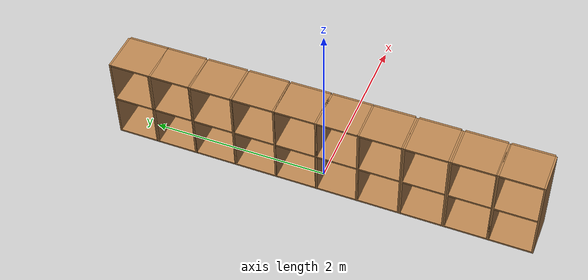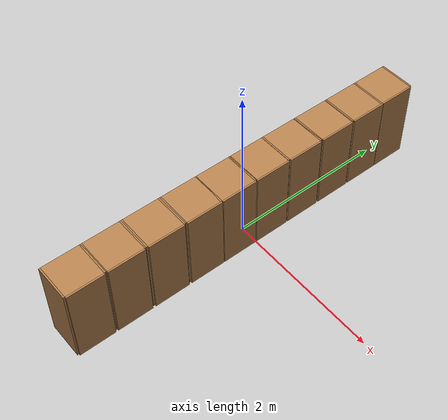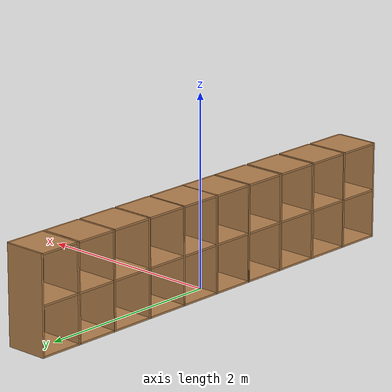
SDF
<?xml version='1.0'?>
<sdf version='1.6'>
  <model name='Locker'>
    <model name='cabinet'>
      <static>1</static>
      <link name='cabinet_bottom_plate'>
        <inertial>
          <pose frame=''>0 0 -1 0 -0 0</pose>
          <inertia>
            <ixx>2.05</ixx>
            <ixy>0</ixy>
            <ixz>0</ixz>
            <iyy>2.05</iyy>
            <iyz>0</iyz>
            <izz>2.05</izz>
          </inertia>
          <mass>25</mass>
        </inertial>
        <collision name='cabinet_bottom_plate_geom'>
          <pose frame=''>0 0 0.01 0 -0 0</pose>
          <geometry>
            <box>
              <size>0.45 0.45 0.02</size>
            </box>
          </geometry>
        </collision>
        <visual name='cabinet_bottom_plate_geom_visual'>
          <pose frame=''>0 0 0.01 0 -0 0</pose>
          <geometry>
            <box>
              <size>0.45 0.45 0.02</size>
            </box>
          </geometry>
          <material>
            <script>
              <uri>file://media/materials/scripts/gazebo.material</uri>
              <name>Gazebo/Wood</name>
            </script>
          </material>
        </visual>
        <collision name='cabinet_bottom_plate_geom_cabinet_back_plate'>
          <pose frame=''>0.235 0 0.51 0 -0 0</pose>
          <geometry>
            <box>
              <size>0.02 0.45 1.02</size>
            </box>
          </geometry>
        </collision>
        <visual name='cabinet_bottom_plate_geom_cabinet_back_plate_visual'>
          <pose frame=''>0.235 0 0.51 0 -0 0</pose>
          <geometry>
            <box>
              <size>0.02 0.45 1.02</size>
            </box>
          </geometry>
          <material>
            <script>
              <uri>file://media/materials/scripts/gazebo.material</uri>
              <name>Gazebo/Wood</name>
            </script>
          </material>
        </visual>
        <collision name='cabinet_bottom_plate_geom_cabinet_left_plate'>
          <pose frame=''>0 0.235 0.51 0 -0 0</pose>
          <geometry>
            <box>
              <size>0.45 0.02 1.02</size>
            </box>
          </geometry>
        </collision>
        <visual name='cabinet_bottom_plate_geom_cabinet_left_plate_visual'>
          <pose frame=''>0 0.235 0.51 0 -0 0</pose>
          <geometry>
            <box>
              <size>0.45 0.02 1.02</size>
            </box>
          </geometry>
          <material>
            <script>
              <uri>file://media/materials/scripts/gazebo.material</uri>
              <name>Gazebo/Wood</name>
            </script>
          </material>
        </visual>
        <collision name='cabinet_bottom_plate_geom_cabinet_middle_plate'>
          <pose frame=''>0 0 0.51 0 -0 0</pose>
          <geometry>
            <box>
              <size>0.45 0.45 0.02</size>
            </box>
          </geometry>
        </collision>
        <visual name='cabinet_bottom_plate_geom_cabinet_middle_plate_visual'>
          <pose frame=''>0 0 0.51 0 -0 0</pose>
          <geometry>
            <box>
              <size>0.45 0.45 0.02</size>
            </box>
          </geometry>
          <material>
            <script>
              <uri>file://media/materials/scripts/gazebo.material</uri>
              <name>Gazebo/Wood</name>
            </script>
          </material>
        </visual>
        <collision name='cabinet_bottom_plate_geom_cabinet_right_plate'>
          <pose frame=''>0 -0.235 0.51 0 -0 0</pose>
          <geometry>
            <box>
              <size>0.45 0.02 1.02</size>
            </box>
          </geometry>
        </collision>
        <visual name='cabinet_bottom_plate_geom_cabinet_right_plate_visual'>
          <pose frame=''>0 -0.235 0.51 0 -0 0</pose>
          <geometry>
            <box>
              <size>0.45 0.02 1.02</size>
            </box>
          </geometry>
          <material>
            <script>
              <uri>file://media/materials/scripts/gazebo.material</uri>
              <name>Gazebo/Wood</name>
            </script>
          </material>
        </visual>
        <collision name='cabinet_bottom_plate_geom_cabinet_top_plate'>
          <pose frame=''>0 0 1.01 0 -0 0</pose>
          <geometry>
            <box>
              <size>0.45 0.45 0.02</size>
            </box>
          </geometry>
        </collision>
        <visual name='cabinet_bottom_plate_geom_cabinet_top_plate_visual'>
          <pose frame=''>0 0 1.01 0 -0 0</pose>
          <geometry>
            <box>
              <size>0.45 0.45 0.02</size>
            </box>
          </geometry>
          <material>
            <script>
              <uri>file://media/materials/scripts/gazebo.material</uri>
              <name>Gazebo/Wood</name>
            </script>
          </material>
        </visual>
      </link>
      <pose frame=''>-0 2.11575 0 0 -0 0</pose>
    </model>
    <model name='cabinet_0'>
      <static>1</static>
      <link name='cabinet_bottom_plate'>
        <inertial>
          <pose frame=''>0 0 -1 0 -0 0</pose>
          <inertia>
            <ixx>2.05</ixx>
            <ixy>0</ixy>
            <ixz>0</ixz>
            <iyy>2.05</iyy>
            <iyz>0</iyz>
            <izz>2.05</izz>
          </inertia>
          <mass>25</mass>
        </inertial>
        <collision name='cabinet_bottom_plate_geom'>
          <pose frame=''>0 0 0.01 0 -0 0</pose>
          <geometry>
            <box>
              <size>0.45 0.45 0.02</size>
            </box>
          </geometry>
        </collision>
        <visual name='cabinet_bottom_plate_geom_visual'>
          <pose frame=''>0 0 0.01 0 -0 0</pose>
          <geometry>
            <box>
              <size>0.45 0.45 0.02</size>
            </box>
          </geometry>
          <material>
            <script>
              <uri>file://media/materials/scripts/gazebo.material</uri>
              <name>Gazebo/Wood</name>
            </script>
          </material>
        </visual>
        <collision name='cabinet_bottom_plate_geom_cabinet_back_plate'>
          <pose frame=''>0.235 0 0.51 0 -0 0</pose>
          <geometry>
            <box>
              <size>0.02 0.45 1.02</size>
            </box>
          </geometry>
        </collision>
        <visual name='cabinet_bottom_plate_geom_cabinet_back_plate_visual'>
          <pose frame=''>0.235 0 0.51 0 -0 0</pose>
          <geometry>
            <box>
              <size>0.02 0.45 1.02</size>
            </box>
          </geometry>
          <material>
            <script>
              <uri>file://media/materials/scripts/gazebo.material</uri>
              <name>Gazebo/Wood</name>
            </script>
          </material>
        </visual>
        <collision name='cabinet_bottom_plate_geom_cabinet_left_plate'>
          <pose frame=''>0 0.235 0.51 0 -0 0</pose>
          <geometry>
            <box>
              <size>0.45 0.02 1.02</size>
            </box>
          </geometry>
        </collision>
        <visual name='cabinet_bottom_plate_geom_cabinet_left_plate_visual'>
          <pose frame=''>0 0.235 0.51 0 -0 0</pose>
          <geometry>
            <box>
              <size>0.45 0.02 1.02</size>
            </box>
          </geometry>
          <material>
            <script>
              <uri>file://media/materials/scripts/gazebo.material</uri>
              <name>Gazebo/Wood</name>
            </script>
          </material>
        </visual>
        <collision name='cabinet_bottom_plate_geom_cabinet_middle_plate'>
          <pose frame=''>0 0 0.51 0 -0 0</pose>
          <geometry>
            <box>
              <size>0.45 0.45 0.02</size>
            </box>
          </geometry>
        </collision>
        <visual name='cabinet_bottom_plate_geom_cabinet_middle_plate_visual'>
          <pose frame=''>0 0 0.51 0 -0 0</pose>
          <geometry>
            <box>
              <size>0.45 0.45 0.02</size>
            </box>
          </geometry>
          <material>
            <script>
              <uri>file://media/materials/scripts/gazebo.material</uri>
              <name>Gazebo/Wood</name>
            </script>
          </material>
        </visual>
        <collision name='cabinet_bottom_plate_geom_cabinet_right_plate'>
          <pose frame=''>0 -0.235 0.51 0 -0 0</pose>
          <geometry>
            <box>
              <size>0.45 0.02 1.02</size>
            </box>
          </geometry>
        </collision>
        <visual name='cabinet_bottom_plate_geom_cabinet_right_plate_visual'>
          <pose frame=''>0 -0.235 0.51 0 -0 0</pose>
          <geometry>
            <box>
              <size>0.45 0.02 1.02</size>
            </box>
          </geometry>
          <material>
            <script>
              <uri>file://media/materials/scripts/gazebo.material</uri>
              <name>Gazebo/Wood</name>
            </script>
          </material>
        </visual>
        <collision name='cabinet_bottom_plate_geom_cabinet_top_plate'>
          <pose frame=''>0 0 1.01 0 -0 0</pose>
          <geometry>
            <box>
              <size>0.45 0.45 0.02</size>
            </box>
          </geometry>
        </collision>
        <visual name='cabinet_bottom_plate_geom_cabinet_top_plate_visual'>
          <pose frame=''>0 0 1.01 0 -0 0</pose>
          <geometry>
            <box>
              <size>0.45 0.45 0.02</size>
            </box>
          </geometry>
          <material>
            <script>
              <uri>file://media/materials/scripts/gazebo.material</uri>
              <name>Gazebo/Wood</name>
            </script>
          </material>
        </visual>
      </link>
      <pose frame=''>-0 1.66218 0 0 -0 0</pose>
    </model>
    <model name='cabinet_0_clone'>
      <static>1</static>
      <link name='cabinet_bottom_plate'>
        <inertial>
          <pose frame=''>0 0 -1 0 -0 0</pose>
          <inertia>
            <ixx>2.05</ixx>
            <ixy>0</ixy>
            <ixz>0</ixz>
            <iyy>2.05</iyy>
            <iyz>0</iyz>
            <izz>2.05</izz>
          </inertia>
          <mass>25</mass>
        </inertial>
        <collision name='cabinet_bottom_plate_geom'>
          <pose frame=''>0 0 0.01 0 -0 0</pose>
          <geometry>
            <box>
              <size>0.45 0.45 0.02</size>
            </box>
          </geometry>
        </collision>
        <visual name='cabinet_bottom_plate_geom_visual'>
          <pose frame=''>0 0 0.01 0 -0 0</pose>
          <geometry>
            <box>
              <size>0.45 0.45 0.02</size>
            </box>
          </geometry>
          <material>
            <script>
              <uri>file://media/materials/scripts/gazebo.material</uri>
              <name>Gazebo/Wood</name>
            </script>
          </material>
        </visual>
        <collision name='cabinet_bottom_plate_geom_cabinet_back_plate'>
          <pose frame=''>0.235 0 0.51 0 -0 0</pose>
          <geometry>
            <box>
              <size>0.02 0.45 1.02</size>
            </box>
          </geometry>
        </collision>
        <visual name='cabinet_bottom_plate_geom_cabinet_back_plate_visual'>
          <pose frame=''>0.235 0 0.51 0 -0 0</pose>
          <geometry>
            <box>
              <size>0.02 0.45 1.02</size>
            </box>
          </geometry>
          <material>
            <script>
              <uri>file://media/materials/scripts/gazebo.material</uri>
              <name>Gazebo/Wood</name>
            </script>
          </material>
        </visual>
        <collision name='cabinet_bottom_plate_geom_cabinet_left_plate'>
          <pose frame=''>0 0.235 0.51 0 -0 0</pose>
          <geometry>
            <box>
              <size>0.45 0.02 1.02</size>
            </box>
          </geometry>
        </collision>
        <visual name='cabinet_bottom_plate_geom_cabinet_left_plate_visual'>
          <pose frame=''>0 0.235 0.51 0 -0 0</pose>
          <geometry>
            <box>
              <size>0.45 0.02 1.02</size>
            </box>
          </geometry>
          <material>
            <script>
              <uri>file://media/materials/scripts/gazebo.material</uri>
              <name>Gazebo/Wood</name>
            </script>
          </material>
        </visual>
        <collision name='cabinet_bottom_plate_geom_cabinet_middle_plate'>
          <pose frame=''>0 0 0.51 0 -0 0</pose>
          <geometry>
            <box>
              <size>0.45 0.45 0.02</size>
            </box>
          </geometry>
        </collision>
        <visual name='cabinet_bottom_plate_geom_cabinet_middle_plate_visual'>
          <pose frame=''>0 0 0.51 0 -0 0</pose>
          <geometry>
            <box>
              <size>0.45 0.45 0.02</size>
            </box>
          </geometry>
          <material>
            <script>
              <uri>file://media/materials/scripts/gazebo.material</uri>
              <name>Gazebo/Wood</name>
            </script>
          </material>
        </visual>
        <collision name='cabinet_bottom_plate_geom_cabinet_right_plate'>
          <pose frame=''>0 -0.235 0.51 0 -0 0</pose>
          <geometry>
            <box>
              <size>0.45 0.02 1.02</size>
            </box>
          </geometry>
        </collision>
        <visual name='cabinet_bottom_plate_geom_cabinet_right_plate_visual'>
          <pose frame=''>0 -0.235 0.51 0 -0 0</pose>
          <geometry>
            <box>
              <size>0.45 0.02 1.02</size>
            </box>
          </geometry>
          <material>
            <script>
              <uri>file://media/materials/scripts/gazebo.material</uri>
              <name>Gazebo/Wood</name>
            </script>
          </material>
        </visual>
        <collision name='cabinet_bottom_plate_geom_cabinet_top_plate'>
          <pose frame=''>0 0 1.01 0 -0 0</pose>
          <geometry>
            <box>
              <size>0.45 0.45 0.02</size>
            </box>
          </geometry>
        </collision>
        <visual name='cabinet_bottom_plate_geom_cabinet_top_plate_visual'>
          <pose frame=''>0 0 1.01 0 -0 0</pose>
          <geometry>
            <box>
              <size>0.45 0.45 0.02</size>
            </box>
          </geometry>
          <material>
            <script>
              <uri>file://media/materials/scripts/gazebo.material</uri>
              <name>Gazebo/Wood</name>
            </script>
          </material>
        </visual>
      </link>
      <pose frame=''>-0 1.18504 0 0 -0 0</pose>
    </model>
    <model name='cabinet_0_clone_0'>
      <static>1</static>
      <link name='cabinet_bottom_plate'>
        <inertial>
          <pose frame=''>0 0 -1 0 -0 0</pose>
          <inertia>
            <ixx>2.05</ixx>
            <ixy>0</ixy>
            <ixz>0</ixz>
            <iyy>2.05</iyy>
            <iyz>0</iyz>
            <izz>2.05</izz>
          </inertia>
          <mass>25</mass>
        </inertial>
        <collision name='cabinet_bottom_plate_geom'>
          <pose frame=''>0 0 0.01 0 -0 0</pose>
          <geometry>
            <box>
              <size>0.45 0.45 0.02</size>
            </box>
          </geometry>
        </collision>
        <visual name='cabinet_bottom_plate_geom_visual'>
          <pose frame=''>0 0 0.01 0 -0 0</pose>
          <geometry>
            <box>
              <size>0.45 0.45 0.02</size>
            </box>
          </geometry>
          <material>
            <script>
              <uri>file://media/materials/scripts/gazebo.material</uri>
              <name>Gazebo/Wood</name>
            </script>
          </material>
        </visual>
        <collision name='cabinet_bottom_plate_geom_cabinet_back_plate'>
          <pose frame=''>0.235 0 0.51 0 -0 0</pose>
          <geometry>
            <box>
              <size>0.02 0.45 1.02</size>
            </box>
          </geometry>
        </collision>
        <visual name='cabinet_bottom_plate_geom_cabinet_back_plate_visual'>
          <pose frame=''>0.235 0 0.51 0 -0 0</pose>
          <geometry>
            <box>
              <size>0.02 0.45 1.02</size>
            </box>
          </geometry>
          <material>
            <script>
              <uri>file://media/materials/scripts/gazebo.material</uri>
              <name>Gazebo/Wood</name>
            </script>
          </material>
        </visual>
        <collision name='cabinet_bottom_plate_geom_cabinet_left_plate'>
          <pose frame=''>0 0.235 0.51 0 -0 0</pose>
          <geometry>
            <box>
              <size>0.45 0.02 1.02</size>
            </box>
          </geometry>
        </collision>
        <visual name='cabinet_bottom_plate_geom_cabinet_left_plate_visual'>
          <pose frame=''>0 0.235 0.51 0 -0 0</pose>
          <geometry>
            <box>
              <size>0.45 0.02 1.02</size>
            </box>
          </geometry>
          <material>
            <script>
              <uri>file://media/materials/scripts/gazebo.material</uri>
              <name>Gazebo/Wood</name>
            </script>
          </material>
        </visual>
        <collision name='cabinet_bottom_plate_geom_cabinet_middle_plate'>
          <pose frame=''>0 0 0.51 0 -0 0</pose>
          <geometry>
            <box>
              <size>0.45 0.45 0.02</size>
            </box>
          </geometry>
        </collision>
        <visual name='cabinet_bottom_plate_geom_cabinet_middle_plate_visual'>
          <pose frame=''>0 0 0.51 0 -0 0</pose>
          <geometry>
            <box>
              <size>0.45 0.45 0.02</size>
            </box>
          </geometry>
          <material>
            <script>
              <uri>file://media/materials/scripts/gazebo.material</uri>
              <name>Gazebo/Wood</name>
            </script>
          </material>
        </visual>
        <collision name='cabinet_bottom_plate_geom_cabinet_right_plate'>
          <pose frame=''>0 -0.235 0.51 0 -0 0</pose>
          <geometry>
            <box>
              <size>0.45 0.02 1.02</size>
            </box>
          </geometry>
        </collision>
        <visual name='cabinet_bottom_plate_geom_cabinet_right_plate_visual'>
          <pose frame=''>0 -0.235 0.51 0 -0 0</pose>
          <geometry>
            <box>
              <size>0.45 0.02 1.02</size>
            </box>
          </geometry>
          <material>
            <script>
              <uri>file://media/materials/scripts/gazebo.material</uri>
              <name>Gazebo/Wood</name>
            </script>
          </material>
        </visual>
        <collision name='cabinet_bottom_plate_geom_cabinet_top_plate'>
          <pose frame=''>0 0 1.01 0 -0 0</pose>
          <geometry>
            <box>
              <size>0.45 0.45 0.02</size>
            </box>
          </geometry>
        </collision>
        <visual name='cabinet_bottom_plate_geom_cabinet_top_plate_visual'>
          <pose frame=''>0 0 1.01 0 -0 0</pose>
          <geometry>
            <box>
              <size>0.45 0.45 0.02</size>
            </box>
          </geometry>
          <material>
            <script>
              <uri>file://media/materials/scripts/gazebo.material</uri>
              <name>Gazebo/Wood</name>
            </script>
          </material>
        </visual>
      </link>
      <pose frame=''>-0 0.706909 0 0 -0 0</pose>
    </model>
    <model name='cabinet_0_clone_1'>
      <static>1</static>
      <link name='cabinet_bottom_plate'>
        <inertial>
          <pose frame=''>0 0 -1 0 -0 0</pose>
          <inertia>
            <ixx>2.05</ixx>
            <ixy>0</ixy>
            <ixz>0</ixz>
            <iyy>2.05</iyy>
            <iyz>0</iyz>
            <izz>2.05</izz>
          </inertia>
          <mass>25</mass>
        </inertial>
        <collision name='cabinet_bottom_plate_geom'>
          <pose frame=''>0 0 0.01 0 -0 0</pose>
          <geometry>
            <box>
              <size>0.45 0.45 0.02</size>
            </box>
          </geometry>
        </collision>
        <visual name='cabinet_bottom_plate_geom_visual'>
          <pose frame=''>0 0 0.01 0 -0 0</pose>
          <geometry>
            <box>
              <size>0.45 0.45 0.02</size>
            </box>
          </geometry>
          <material>
            <script>
              <uri>file://media/materials/scripts/gazebo.material</uri>
              <name>Gazebo/Wood</name>
            </script>
          </material>
        </visual>
        <collision name='cabinet_bottom_plate_geom_cabinet_back_plate'>
          <pose frame=''>0.235 0 0.51 0 -0 0</pose>
          <geometry>
            <box>
              <size>0.02 0.45 1.02</size>
            </box>
          </geometry>
        </collision>
        <visual name='cabinet_bottom_plate_geom_cabinet_back_plate_visual'>
          <pose frame=''>0.235 0 0.51 0 -0 0</pose>
          <geometry>
            <box>
              <size>0.02 0.45 1.02</size>
            </box>
          </geometry>
          <material>
            <script>
              <uri>file://media/materials/scripts/gazebo.material</uri>
              <name>Gazebo/Wood</name>
            </script>
          </material>
        </visual>
        <collision name='cabinet_bottom_plate_geom_cabinet_left_plate'>
          <pose frame=''>0 0.235 0.51 0 -0 0</pose>
          <geometry>
            <box>
              <size>0.45 0.02 1.02</size>
            </box>
          </geometry>
        </collision>
        <visual name='cabinet_bottom_plate_geom_cabinet_left_plate_visual'>
          <pose frame=''>0 0.235 0.51 0 -0 0</pose>
          <geometry>
            <box>
              <size>0.45 0.02 1.02</size>
            </box>
          </geometry>
          <material>
            <script>
              <uri>file://media/materials/scripts/gazebo.material</uri>
              <name>Gazebo/Wood</name>
            </script>
          </material>
        </visual>
        <collision name='cabinet_bottom_plate_geom_cabinet_middle_plate'>
          <pose frame=''>0 0 0.51 0 -0 0</pose>
          <geometry>
            <box>
              <size>0.45 0.45 0.02</size>
            </box>
          </geometry>
        </collision>
        <visual name='cabinet_bottom_plate_geom_cabinet_middle_plate_visual'>
          <pose frame=''>0 0 0.51 0 -0 0</pose>
          <geometry>
            <box>
              <size>0.45 0.45 0.02</size>
            </box>
          </geometry>
          <material>
            <script>
              <uri>file://media/materials/scripts/gazebo.material</uri>
              <name>Gazebo/Wood</name>
            </script>
          </material>
        </visual>
        <collision name='cabinet_bottom_plate_geom_cabinet_right_plate'>
          <pose frame=''>0 -0.235 0.51 0 -0 0</pose>
          <geometry>
            <box>
              <size>0.45 0.02 1.02</size>
            </box>
          </geometry>
        </collision>
        <visual name='cabinet_bottom_plate_geom_cabinet_right_plate_visual'>
          <pose frame=''>0 -0.235 0.51 0 -0 0</pose>
          <geometry>
            <box>
              <size>0.45 0.02 1.02</size>
            </box>
          </geometry>
          <material>
            <script>
              <uri>file://media/materials/scripts/gazebo.material</uri>
              <name>Gazebo/Wood</name>
            </script>
          </material>
        </visual>
        <collision name='cabinet_bottom_plate_geom_cabinet_top_plate'>
          <pose frame=''>0 0 1.01 0 -0 0</pose>
          <geometry>
            <box>
              <size>0.45 0.45 0.02</size>
            </box>
          </geometry>
        </collision>
        <visual name='cabinet_bottom_plate_geom_cabinet_top_plate_visual'>
          <pose frame=''>0 0 1.01 0 -0 0</pose>
          <geometry>
            <box>
              <size>0.45 0.45 0.02</size>
            </box>
          </geometry>
          <material>
            <script>
              <uri>file://media/materials/scripts/gazebo.material</uri>
              <name>Gazebo/Wood</name>
            </script>
          </material>
        </visual>
      </link>
      <pose frame=''>-0 0.23468 0 0 -0 0</pose>
    </model>
    <model name='cabinet_0_clone_2'>
      <static>1</static>
      <link name='cabinet_bottom_plate'>
        <inertial>
          <pose frame=''>0 0 -1 0 -0 0</pose>
          <inertia>
            <ixx>2.05</ixx>
            <ixy>0</ixy>
            <ixz>0</ixz>
            <iyy>2.05</iyy>
            <iyz>0</iyz>
            <izz>2.05</izz>
          </inertia>
          <mass>25</mass>
        </inertial>
        <collision name='cabinet_bottom_plate_geom'>
          <pose frame=''>0 0 0.01 0 -0 0</pose>
          <geometry>
            <box>
              <size>0.45 0.45 0.02</size>
            </box>
          </geometry>
        </collision>
        <visual name='cabinet_bottom_plate_geom_visual'>
          <pose frame=''>0 0 0.01 0 -0 0</pose>
          <geometry>
            <box>
              <size>0.45 0.45 0.02</size>
            </box>
          </geometry>
          <material>
            <script>
              <uri>file://media/materials/scripts/gazebo.material</uri>
              <name>Gazebo/Wood</name>
            </script>
          </material>
        </visual>
        <collision name='cabinet_bottom_plate_geom_cabinet_back_plate'>
          <pose frame=''>0.235 0 0.51 0 -0 0</pose>
          <geometry>
            <box>
              <size>0.02 0.45 1.02</size>
            </box>
          </geometry>
        </collision>
        <visual name='cabinet_bottom_plate_geom_cabinet_back_plate_visual'>
          <pose frame=''>0.235 0 0.51 0 -0 0</pose>
          <geometry>
            <box>
              <size>0.02 0.45 1.02</size>
            </box>
          </geometry>
          <material>
            <script>
              <uri>file://media/materials/scripts/gazebo.material</uri>
              <name>Gazebo/Wood</name>
            </script>
          </material>
        </visual>
        <collision name='cabinet_bottom_plate_geom_cabinet_left_plate'>
          <pose frame=''>0 0.235 0.51 0 -0 0</pose>
          <geometry>
            <box>
              <size>0.45 0.02 1.02</size>
            </box>
          </geometry>
        </collision>
        <visual name='cabinet_bottom_plate_geom_cabinet_left_plate_visual'>
          <pose frame=''>0 0.235 0.51 0 -0 0</pose>
          <geometry>
            <box>
              <size>0.45 0.02 1.02</size>
            </box>
          </geometry>
          <material>
            <script>
              <uri>file://media/materials/scripts/gazebo.material</uri>
              <name>Gazebo/Wood</name>
            </script>
          </material>
        </visual>
        <collision name='cabinet_bottom_plate_geom_cabinet_middle_plate'>
          <pose frame=''>0 0 0.51 0 -0 0</pose>
          <geometry>
            <box>
              <size>0.45 0.45 0.02</size>
            </box>
          </geometry>
        </collision>
        <visual name='cabinet_bottom_plate_geom_cabinet_middle_plate_visual'>
          <pose frame=''>0 0 0.51 0 -0 0</pose>
          <geometry>
            <box>
              <size>0.45 0.45 0.02</size>
            </box>
          </geometry>
          <material>
            <script>
              <uri>file://media/materials/scripts/gazebo.material</uri>
              <name>Gazebo/Wood</name>
            </script>
          </material>
        </visual>
        <collision name='cabinet_bottom_plate_geom_cabinet_right_plate'>
          <pose frame=''>0 -0.235 0.51 0 -0 0</pose>
          <geometry>
            <box>
              <size>0.45 0.02 1.02</size>
            </box>
          </geometry>
        </collision>
        <visual name='cabinet_bottom_plate_geom_cabinet_right_plate_visual'>
          <pose frame=''>0 -0.235 0.51 0 -0 0</pose>
          <geometry>
            <box>
              <size>0.45 0.02 1.02</size>
            </box>
          </geometry>
          <material>
            <script>
              <uri>file://media/materials/scripts/gazebo.material</uri>
              <name>Gazebo/Wood</name>
            </script>
          </material>
        </visual>
        <collision name='cabinet_bottom_plate_geom_cabinet_top_plate'>
          <pose frame=''>0 0 1.01 0 -0 0</pose>
          <geometry>
            <box>
              <size>0.45 0.45 0.02</size>
            </box>
          </geometry>
        </collision>
        <visual name='cabinet_bottom_plate_geom_cabinet_top_plate_visual'>
          <pose frame=''>0 0 1.01 0 -0 0</pose>
          <geometry>
            <box>
              <size>0.45 0.45 0.02</size>
            </box>
          </geometry>
          <material>
            <script>
              <uri>file://media/materials/scripts/gazebo.material</uri>
              <name>Gazebo/Wood</name>
            </script>
          </material>
        </visual>
      </link>
      <pose frame=''>-0 -0.229028 0 0 -0 0</pose>
    </model>
    <model name='cabinet_0_clone_3'>
      <static>1</static>
      <link name='cabinet_bottom_plate'>
        <inertial>
          <pose frame=''>0 0 -1 0 -0 0</pose>
          <inertia>
            <ixx>2.05</ixx>
            <ixy>0</ixy>
            <ixz>0</ixz>
            <iyy>2.05</iyy>
            <iyz>0</iyz>
            <izz>2.05</izz>
          </inertia>
          <mass>25</mass>
        </inertial>
        <collision name='cabinet_bottom_plate_geom'>
          <pose frame=''>0 0 0.01 0 -0 0</pose>
          <geometry>
            <box>
              <size>0.45 0.45 0.02</size>
            </box>
          </geometry>
        </collision>
        <visual name='cabinet_bottom_plate_geom_visual'>
          <pose frame=''>0 0 0.01 0 -0 0</pose>
          <geometry>
            <box>
              <size>0.45 0.45 0.02</size>
            </box>
          </geometry>
          <material>
            <script>
              <uri>file://media/materials/scripts/gazebo.material</uri>
              <name>Gazebo/Wood</name>
            </script>
          </material>
        </visual>
        <collision name='cabinet_bottom_plate_geom_cabinet_back_plate'>
          <pose frame=''>0.235 0 0.51 0 -0 0</pose>
          <geometry>
            <box>
              <size>0.02 0.45 1.02</size>
            </box>
          </geometry>
        </collision>
        <visual name='cabinet_bottom_plate_geom_cabinet_back_plate_visual'>
          <pose frame=''>0.235 0 0.51 0 -0 0</pose>
          <geometry>
            <box>
              <size>0.02 0.45 1.02</size>
            </box>
          </geometry>
          <material>
            <script>
              <uri>file://media/materials/scripts/gazebo.material</uri>
              <name>Gazebo/Wood</name>
            </script>
          </material>
        </visual>
        <collision name='cabinet_bottom_plate_geom_cabinet_left_plate'>
          <pose frame=''>0 0.235 0.51 0 -0 0</pose>
          <geometry>
            <box>
              <size>0.45 0.02 1.02</size>
            </box>
          </geometry>
        </collision>
        <visual name='cabinet_bottom_plate_geom_cabinet_left_plate_visual'>
          <pose frame=''>0 0.235 0.51 0 -0 0</pose>
          <geometry>
            <box>
              <size>0.45 0.02 1.02</size>
            </box>
          </geometry>
          <material>
            <script>
              <uri>file://media/materials/scripts/gazebo.material</uri>
              <name>Gazebo/Wood</name>
            </script>
          </material>
        </visual>
        <collision name='cabinet_bottom_plate_geom_cabinet_middle_plate'>
          <pose frame=''>0 0 0.51 0 -0 0</pose>
          <geometry>
            <box>
              <size>0.45 0.45 0.02</size>
            </box>
          </geometry>
        </collision>
        <visual name='cabinet_bottom_plate_geom_cabinet_middle_plate_visual'>
          <pose frame=''>0 0 0.51 0 -0 0</pose>
          <geometry>
            <box>
              <size>0.45 0.45 0.02</size>
            </box>
          </geometry>
          <material>
            <script>
              <uri>file://media/materials/scripts/gazebo.material</uri>
              <name>Gazebo/Wood</name>
            </script>
          </material>
        </visual>
        <collision name='cabinet_bottom_plate_geom_cabinet_right_plate'>
          <pose frame=''>0 -0.235 0.51 0 -0 0</pose>
          <geometry>
            <box>
              <size>0.45 0.02 1.02</size>
            </box>
          </geometry>
        </collision>
        <visual name='cabinet_bottom_plate_geom_cabinet_right_plate_visual'>
          <pose frame=''>0 -0.235 0.51 0 -0 0</pose>
          <geometry>
            <box>
              <size>0.45 0.02 1.02</size>
            </box>
          </geometry>
          <material>
            <script>
              <uri>file://media/materials/scripts/gazebo.material</uri>
              <name>Gazebo/Wood</name>
            </script>
          </material>
        </visual>
        <collision name='cabinet_bottom_plate_geom_cabinet_top_plate'>
          <pose frame=''>0 0 1.01 0 -0 0</pose>
          <geometry>
            <box>
              <size>0.45 0.45 0.02</size>
            </box>
          </geometry>
        </collision>
        <visual name='cabinet_bottom_plate_geom_cabinet_top_plate_visual'>
          <pose frame=''>0 0 1.01 0 -0 0</pose>
          <geometry>
            <box>
              <size>0.45 0.45 0.02</size>
            </box>
          </geometry>
          <material>
            <script>
              <uri>file://media/materials/scripts/gazebo.material</uri>
              <name>Gazebo/Wood</name>
            </script>
          </material>
        </visual>
      </link>
      <pose frame=''>-0 -0.689433 0 0 -0 0</pose>
    </model>
    <model name='cabinet_0_clone_4'>
      <static>1</static>
      <link name='cabinet_bottom_plate'>
        <inertial>
          <pose frame=''>0 0 -1 0 -0 0</pose>
          <inertia>
            <ixx>2.05</ixx>
            <ixy>0</ixy>
            <ixz>0</ixz>
            <iyy>2.05</iyy>
            <iyz>0</iyz>
            <izz>2.05</izz>
          </inertia>
          <mass>25</mass>
        </inertial>
        <collision name='cabinet_bottom_plate_geom'>
          <pose frame=''>0 0 0.01 0 -0 0</pose>
          <geometry>
            <box>
              <size>0.45 0.45 0.02</size>
            </box>
          </geometry>
        </collision>
        <visual name='cabinet_bottom_plate_geom_visual'>
          <pose frame=''>0 0 0.01 0 -0 0</pose>
          <geometry>
            <box>
              <size>0.45 0.45 0.02</size>
            </box>
          </geometry>
          <material>
            <script>
              <uri>file://media/materials/scripts/gazebo.material</uri>
              <name>Gazebo/Wood</name>
            </script>
          </material>
        </visual>
        <collision name='cabinet_bottom_plate_geom_cabinet_back_plate'>
          <pose frame=''>0.235 0 0.51 0 -0 0</pose>
          <geometry>
            <box>
              <size>0.02 0.45 1.02</size>
            </box>
          </geometry>
        </collision>
        <visual name='cabinet_bottom_plate_geom_cabinet_back_plate_visual'>
          <pose frame=''>0.235 0 0.51 0 -0 0</pose>
          <geometry>
            <box>
              <size>0.02 0.45 1.02</size>
            </box>
          </geometry>
          <material>
            <script>
              <uri>file://media/materials/scripts/gazebo.material</uri>
              <name>Gazebo/Wood</name>
            </script>
          </material>
        </visual>
        <collision name='cabinet_bottom_plate_geom_cabinet_left_plate'>
          <pose frame=''>0 0.235 0.51 0 -0 0</pose>
          <geometry>
            <box>
              <size>0.45 0.02 1.02</size>
            </box>
          </geometry>
        </collision>
        <visual name='cabinet_bottom_plate_geom_cabinet_left_plate_visual'>
          <pose frame=''>0 0.235 0.51 0 -0 0</pose>
          <geometry>
            <box>
              <size>0.45 0.02 1.02</size>
            </box>
          </geometry>
          <material>
            <script>
              <uri>file://media/materials/scripts/gazebo.material</uri>
              <name>Gazebo/Wood</name>
            </script>
          </material>
        </visual>
        <collision name='cabinet_bottom_plate_geom_cabinet_middle_plate'>
          <pose frame=''>0 0 0.51 0 -0 0</pose>
          <geometry>
            <box>
              <size>0.45 0.45 0.02</size>
            </box>
          </geometry>
        </collision>
        <visual name='cabinet_bottom_plate_geom_cabinet_middle_plate_visual'>
          <pose frame=''>0 0 0.51 0 -0 0</pose>
          <geometry>
            <box>
              <size>0.45 0.45 0.02</size>
            </box>
          </geometry>
          <material>
            <script>
              <uri>file://media/materials/scripts/gazebo.material</uri>
              <name>Gazebo/Wood</name>
            </script>
          </material>
        </visual>
        <collision name='cabinet_bottom_plate_geom_cabinet_right_plate'>
          <pose frame=''>0 -0.235 0.51 0 -0 0</pose>
          <geometry>
            <box>
              <size>0.45 0.02 1.02</size>
            </box>
          </geometry>
        </collision>
        <visual name='cabinet_bottom_plate_geom_cabinet_right_plate_visual'>
          <pose frame=''>0 -0.235 0.51 0 -0 0</pose>
          <geometry>
            <box>
              <size>0.45 0.02 1.02</size>
            </box>
          </geometry>
          <material>
            <script>
              <uri>file://media/materials/scripts/gazebo.material</uri>
              <name>Gazebo/Wood</name>
            </script>
          </material>
        </visual>
        <collision name='cabinet_bottom_plate_geom_cabinet_top_plate'>
          <pose frame=''>0 0 1.01 0 -0 0</pose>
          <geometry>
            <box>
              <size>0.45 0.45 0.02</size>
            </box>
          </geometry>
        </collision>
        <visual name='cabinet_bottom_plate_geom_cabinet_top_plate_visual'>
          <pose frame=''>0 0 1.01 0 -0 0</pose>
          <geometry>
            <box>
              <size>0.45 0.45 0.02</size>
            </box>
          </geometry>
          <material>
            <script>
              <uri>file://media/materials/scripts/gazebo.material</uri>
              <name>Gazebo/Wood</name>
            </script>
          </material>
        </visual>
      </link>
      <pose frame=''>-0 -1.17658 0 0 -0 0</pose>
    </model>
    <model name='cabinet_0_clone_5'>
      <static>1</static>
      <link name='cabinet_bottom_plate'>
        <inertial>
          <pose frame=''>0 0 -1 0 -0 0</pose>
          <inertia>
            <ixx>2.05</ixx>
            <ixy>0</ixy>
            <ixz>0</ixz>
            <iyy>2.05</iyy>
            <iyz>0</iyz>
            <izz>2.05</izz>
          </inertia>
          <mass>25</mass>
        </inertial>
        <collision name='cabinet_bottom_plate_geom'>
          <pose frame=''>0 0 0.01 0 -0 0</pose>
          <geometry>
            <box>
              <size>0.45 0.45 0.02</size>
            </box>
          </geometry>
        </collision>
        <visual name='cabinet_bottom_plate_geom_visual'>
          <pose frame=''>0 0 0.01 0 -0 0</pose>
          <geometry>
            <box>
              <size>0.45 0.45 0.02</size>
            </box>
          </geometry>
          <material>
            <script>
              <uri>file://media/materials/scripts/gazebo.material</uri>
              <name>Gazebo/Wood</name>
            </script>
          </material>
        </visual>
        <collision name='cabinet_bottom_plate_geom_cabinet_back_plate'>
          <pose frame=''>0.235 0 0.51 0 -0 0</pose>
          <geometry>
            <box>
              <size>0.02 0.45 1.02</size>
            </box>
          </geometry>
        </collision>
        <visual name='cabinet_bottom_plate_geom_cabinet_back_plate_visual'>
          <pose frame=''>0.235 0 0.51 0 -0 0</pose>
          <geometry>
            <box>
              <size>0.02 0.45 1.02</size>
            </box>
          </geometry>
          <material>
            <script>
              <uri>file://media/materials/scripts/gazebo.material</uri>
              <name>Gazebo/Wood</name>
            </script>
          </material>
        </visual>
        <collision name='cabinet_bottom_plate_geom_cabinet_left_plate'>
          <pose frame=''>0 0.235 0.51 0 -0 0</pose>
          <geometry>
            <box>
              <size>0.45 0.02 1.02</size>
            </box>
          </geometry>
        </collision>
        <visual name='cabinet_bottom_plate_geom_cabinet_left_plate_visual'>
          <pose frame=''>0 0.235 0.51 0 -0 0</pose>
          <geometry>
            <box>
              <size>0.45 0.02 1.02</size>
            </box>
          </geometry>
          <material>
            <script>
              <uri>file://media/materials/scripts/gazebo.material</uri>
              <name>Gazebo/Wood</name>
            </script>
          </material>
        </visual>
        <collision name='cabinet_bottom_plate_geom_cabinet_middle_plate'>
          <pose frame=''>0 0 0.51 0 -0 0</pose>
          <geometry>
            <box>
              <size>0.45 0.45 0.02</size>
            </box>
          </geometry>
        </collision>
        <visual name='cabinet_bottom_plate_geom_cabinet_middle_plate_visual'>
          <pose frame=''>0 0 0.51 0 -0 0</pose>
          <geometry>
            <box>
              <size>0.45 0.45 0.02</size>
            </box>
          </geometry>
          <material>
            <script>
              <uri>file://media/materials/scripts/gazebo.material</uri>
              <name>Gazebo/Wood</name>
            </script>
          </material>
        </visual>
        <collision name='cabinet_bottom_plate_geom_cabinet_right_plate'>
          <pose frame=''>0 -0.235 0.51 0 -0 0</pose>
          <geometry>
            <box>
              <size>0.45 0.02 1.02</size>
            </box>
          </geometry>
        </collision>
        <visual name='cabinet_bottom_plate_geom_cabinet_right_plate_visual'>
          <pose frame=''>0 -0.235 0.51 0 -0 0</pose>
          <geometry>
            <box>
              <size>0.45 0.02 1.02</size>
            </box>
          </geometry>
          <material>
            <script>
              <uri>file://media/materials/scripts/gazebo.material</uri>
              <name>Gazebo/Wood</name>
            </script>
          </material>
        </visual>
        <collision name='cabinet_bottom_plate_geom_cabinet_top_plate'>
          <pose frame=''>0 0 1.01 0 -0 0</pose>
          <geometry>
            <box>
              <size>0.45 0.45 0.02</size>
            </box>
          </geometry>
        </collision>
        <visual name='cabinet_bottom_plate_geom_cabinet_top_plate_visual'>
          <pose frame=''>0 0 1.01 0 -0 0</pose>
          <geometry>
            <box>
              <size>0.45 0.45 0.02</size>
            </box>
          </geometry>
          <material>
            <script>
              <uri>file://media/materials/scripts/gazebo.material</uri>
              <name>Gazebo/Wood</name>
            </script>
          </material>
        </visual>
      </link>
      <pose frame=''>-0 -1.6643 0 0 -0 0</pose>
    </model>
    <model name='cabinet_0_clone_6'>
      <static>1</static>
      <link name='cabinet_bottom_plate'>
        <inertial>
          <pose frame=''>0 0 -1 0 -0 0</pose>
          <inertia>
            <ixx>2.05</ixx>
            <ixy>0</ixy>
            <ixz>0</ixz>
            <iyy>2.05</iyy>
            <iyz>0</iyz>
            <izz>2.05</izz>
          </inertia>
          <mass>25</mass>
        </inertial>
        <collision name='cabinet_bottom_plate_geom'>
          <pose frame=''>0 0 0.01 0 -0 0</pose>
          <geometry>
            <box>
              <size>0.45 0.45 0.02</size>
            </box>
          </geometry>
        </collision>
        <visual name='cabinet_bottom_plate_geom_visual'>
          <pose frame=''>0 0 0.01 0 -0 0</pose>
          <geometry>
            <box>
              <size>0.45 0.45 0.02</size>
            </box>
          </geometry>
          <material>
            <script>
              <uri>file://media/materials/scripts/gazebo.material</uri>
              <name>Gazebo/Wood</name>
            </script>
          </material>
        </visual>
        <collision name='cabinet_bottom_plate_geom_cabinet_back_plate'>
          <pose frame=''>0.235 0 0.51 0 -0 0</pose>
          <geometry>
            <box>
              <size>0.02 0.45 1.02</size>
            </box>
          </geometry>
        </collision>
        <visual name='cabinet_bottom_plate_geom_cabinet_back_plate_visual'>
          <pose frame=''>0.235 0 0.51 0 -0 0</pose>
          <geometry>
            <box>
              <size>0.02 0.45 1.02</size>
            </box>
          </geometry>
          <material>
            <script>
              <uri>file://media/materials/scripts/gazebo.material</uri>
              <name>Gazebo/Wood</name>
            </script>
          </material>
        </visual>
        <collision name='cabinet_bottom_plate_geom_cabinet_left_plate'>
          <pose frame=''>0 0.235 0.51 0 -0 0</pose>
          <geometry>
            <box>
              <size>0.45 0.02 1.02</size>
            </box>
          </geometry>
        </collision>
        <visual name='cabinet_bottom_plate_geom_cabinet_left_plate_visual'>
          <pose frame=''>0 0.235 0.51 0 -0 0</pose>
          <geometry>
            <box>
              <size>0.45 0.02 1.02</size>
            </box>
          </geometry>
          <material>
            <script>
              <uri>file://media/materials/scripts/gazebo.material</uri>
              <name>Gazebo/Wood</name>
            </script>
          </material>
        </visual>
        <collision name='cabinet_bottom_plate_geom_cabinet_middle_plate'>
          <pose frame=''>0 0 0.51 0 -0 0</pose>
          <geometry>
            <box>
              <size>0.45 0.45 0.02</size>
            </box>
          </geometry>
        </collision>
        <visual name='cabinet_bottom_plate_geom_cabinet_middle_plate_visual'>
          <pose frame=''>0 0 0.51 0 -0 0</pose>
          <geometry>
            <box>
              <size>0.45 0.45 0.02</size>
            </box>
          </geometry>
          <material>
            <script>
              <uri>file://media/materials/scripts/gazebo.material</uri>
              <name>Gazebo/Wood</name>
            </script>
          </material>
        </visual>
        <collision name='cabinet_bottom_plate_geom_cabinet_right_plate'>
          <pose frame=''>0 -0.235 0.51 0 -0 0</pose>
          <geometry>
            <box>
              <size>0.45 0.02 1.02</size>
            </box>
          </geometry>
        </collision>
        <visual name='cabinet_bottom_plate_geom_cabinet_right_plate_visual'>
          <pose frame=''>0 -0.235 0.51 0 -0 0</pose>
          <geometry>
            <box>
              <size>0.45 0.02 1.02</size>
            </box>
          </geometry>
          <material>
            <script>
              <uri>file://media/materials/scripts/gazebo.material</uri>
              <name>Gazebo/Wood</name>
            </script>
          </material>
        </visual>
        <collision name='cabinet_bottom_plate_geom_cabinet_top_plate'>
          <pose frame=''>0 0 1.01 0 -0 0</pose>
          <geometry>
            <box>
              <size>0.45 0.45 0.02</size>
            </box>
          </geometry>
        </collision>
        <visual name='cabinet_bottom_plate_geom_cabinet_top_plate_visual'>
          <pose frame=''>0 0 1.01 0 -0 0</pose>
          <geometry>
            <box>
              <size>0.45 0.45 0.02</size>
            </box>
          </geometry>
          <material>
            <script>
              <uri>file://media/materials/scripts/gazebo.material</uri>
              <name>Gazebo/Wood</name>
            </script>
          </material>
        </visual>
      </link>
      <pose frame=''>-0 -2.14521 0 0 -0 0</pose>
    </model>
    <static>0</static>
    <allow_auto_disable>1</allow_auto_disable>
  </model>
</sdf>
